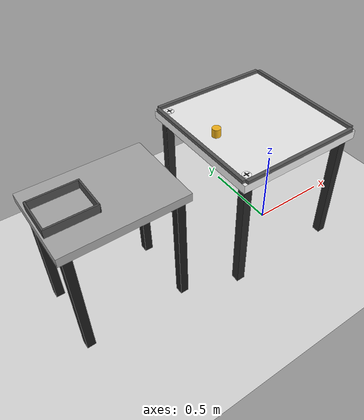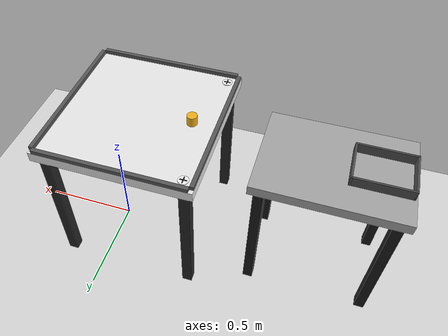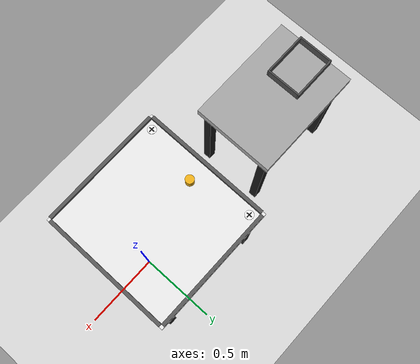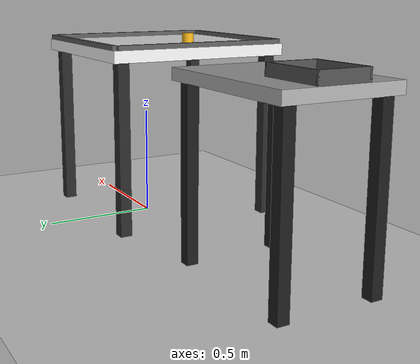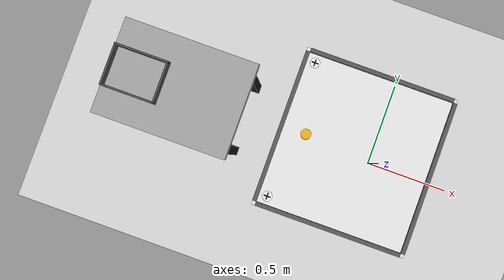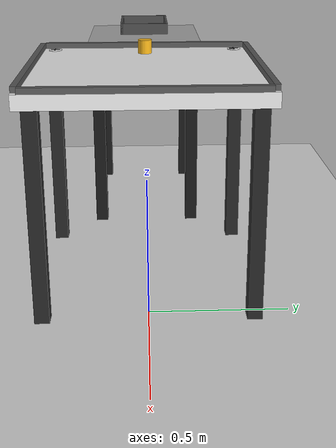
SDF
<sdf version="1.10">
  <world name="visual_autopick_world">

    <plugin filename="gz-sim-physics-system" name="gz::sim::systems::Physics" />
    <plugin filename="gz-sim-user-commands-system" name="gz::sim::systems::UserCommands" />
    <plugin filename="gz-sim-scene-broadcaster-system" name="gz::sim::systems::SceneBroadcaster" />

    <plugin filename="gz-sim-sensors-system" name="gz::sim::systems::Sensors">
      <render_engine>ogre</render_engine>
    </plugin>

    <gravity>0 0 -9.81</gravity>

    <scene>
      <ambient>0.6 0.6 0.6 1</ambient>
      <background>0.95 0.95 0.95 1</background>
      <shadows>true</shadows>
    </scene>

    <physics name="ode_physics" type="ignored">
      <max_step_size>0.001</max_step_size>
      <real_time_update_rate>1000</real_time_update_rate>
      <dart>
        <collision_detector>bullet</collision_detector>
      </dart>
    </physics>

    <light name="sun_world" type="directional">
      <pose>0 0 10 0 0 0</pose>
      <diffuse>1 1 1 1</diffuse>
      <specular>0.1 0.1 0.1 1</specular>
      <direction>-0.5 0.5 -1</direction>
      <cast_shadows>true</cast_shadows>
    </light>

    <model name="ground_plane">
      <static>true</static>
      <pose>0 0 0 0 0 0</pose>
      <link name="link">
        <collision name="collision">
          <geometry><plane><normal>0 0 1</normal><size>100 100</size></plane></geometry>
        </collision>
        <visual name="visual">
          <geometry><plane><normal>0 0 1</normal><size>100 100</size></plane></geometry>
          <material><diffuse>0.85 0.85 0.85 1</diffuse></material>
        </visual>
      </link>
      <plugin filename="gz-sim-pose-publisher-system" name="gz::sim::systems::PosePublisher">
        <publish_pose>true</publish_pose>
        <publish_link_pose>true</publish_link_pose>
        <publish_visual_pose>false</publish_visual_pose>
        <publish_collision_pose>false</publish_collision_pose>
        <static_publisher>false</static_publisher>
      </plugin>
    </model>

    <!-- Mesa de trabajo (objetos) -->
    <model name="mesa_pro">
      <static>true</static>
      <pose>-0.17 0 0.075 0 0 0</pose>
      <link name="link">

        <collision name="tablero_collision">
          <pose>0 0 0.75 0 0 0</pose>
          <geometry><box><size>0.768 0.80 0.05</size></box></geometry>
        </collision>
        <visual name="tablero_visual">
          <pose>0 0 0.75 0 0 0</pose>
          <geometry><box><size>0.768 0.80 0.05</size></box></geometry>
          <material><diffuse>0.92 0.92 0.92 1</diffuse></material>
        </visual>

        <collision name="wall_far_x_pos_c">
          <pose>0.374 0 0.785 0 0 0</pose>
          <geometry><box><size>0.02 0.76 0.02</size></box></geometry>
        </collision>
        <visual name="wall_far_x_pos_v">
          <pose>0.374 0 0.785 0 0 0</pose>
          <geometry><box><size>0.02 0.76 0.02</size></box></geometry>
          <material><diffuse>0.35 0.35 0.35 1</diffuse></material>
        </visual>

        <collision name="wall_near_x_neg_c">
          <pose>-0.374 0 0.785 0 0 0</pose>
          <geometry><box><size>0.02 0.76 0.02</size></box></geometry>
        </collision>
        <visual name="wall_near_x_neg_v">
          <pose>-0.374 0 0.785 0 0 0</pose>
          <geometry><box><size>0.02 0.76 0.02</size></box></geometry>
          <material><diffuse>0.35 0.35 0.35 1</diffuse></material>
        </visual>

        <collision name="wall_north_c">
          <pose>0 0.39 0.785 0 0 0</pose>
          <geometry><box><size>0.728 0.02 0.02</size></box></geometry>
        </collision>
        <visual name="wall_north_v">
          <pose>0 0.39 0.785 0 0 0</pose>
          <geometry><box><size>0.728 0.02 0.02</size></box></geometry>
          <material><diffuse>0.35 0.35 0.35 1</diffuse></material>
        </visual>

        <collision name="wall_south_c">
          <pose>0 -0.39 0.785 0 0 0</pose>
          <geometry><box><size>0.728 0.02 0.02</size></box></geometry>
        </collision>
        <visual name="wall_south_v">
          <pose>0 -0.39 0.785 0 0 0</pose>
          <geometry><box><size>0.728 0.02 0.02</size></box></geometry>
          <material><diffuse>0.35 0.35 0.35 1</diffuse></material>
        </visual>

        <!-- Marcadores de esquina para calibración visual -->
        <visual name="test_marker_front_left_disk_v">
          <pose>-0.324 0.340 0.776 0 0 0</pose>
          <geometry><cylinder><radius>0.025</radius><length>0.003</length></cylinder></geometry>
          <material>
            <ambient>0.96 0.96 0.96 1</ambient>
            <diffuse>0.96 0.96 0.96 1</diffuse>
            <emissive>0.05 0.05 0.05 1</emissive>
          </material>
        </visual>
        <visual name="test_marker_front_left_cross_h_v">
          <pose>-0.324 0.340 0.778 0 0 0</pose>
          <geometry><box><size>0.034 0.005 0.002</size></box></geometry>
          <material><ambient>0.12 0.12 0.12 1</ambient><diffuse>0.12 0.12 0.12 1</diffuse></material>
        </visual>
        <visual name="test_marker_front_left_cross_v_v">
          <pose>-0.324 0.340 0.778 0 0 0</pose>
          <geometry><box><size>0.005 0.034 0.002</size></box></geometry>
          <material><ambient>0.12 0.12 0.12 1</ambient><diffuse>0.12 0.12 0.12 1</diffuse></material>
        </visual>

        <visual name="test_marker_front_right_disk_v">
          <pose>-0.324 -0.340 0.776 0 0 0</pose>
          <geometry><cylinder><radius>0.025</radius><length>0.003</length></cylinder></geometry>
          <material>
            <ambient>0.96 0.96 0.96 1</ambient>
            <diffuse>0.96 0.96 0.96 1</diffuse>
            <emissive>0.05 0.05 0.05 1</emissive>
          </material>
        </visual>
        <visual name="test_marker_front_right_cross_h_v">
          <pose>-0.324 -0.340 0.778 0 0 0</pose>
          <geometry><box><size>0.034 0.005 0.002</size></box></geometry>
          <material><ambient>0.12 0.12 0.12 1</ambient><diffuse>0.12 0.12 0.12 1</diffuse></material>
        </visual>
        <visual name="test_marker_front_right_cross_v_v">
          <pose>-0.324 -0.340 0.778 0 0 0</pose>
          <geometry><box><size>0.005 0.034 0.002</size></box></geometry>
          <material><ambient>0.12 0.12 0.12 1</ambient><diffuse>0.12 0.12 0.12 1</diffuse></material>
        </visual>

        <!-- Patas -->
        <collision name="p1c"><pose> 0.334  0.35 0.375 0 0 0</pose><geometry><box><size>0.05 0.05 0.75</size></box></geometry></collision>
        <visual name="p1v"><pose> 0.334  0.35 0.375 0 0 0</pose><geometry><box><size>0.05 0.05 0.75</size></box></geometry><material><diffuse>0.15 0.15 0.15 1</diffuse></material></visual>

        <collision name="p2c"><pose> 0.334 -0.35 0.375 0 0 0</pose><geometry><box><size>0.05 0.05 0.75</size></box></geometry></collision>
        <visual name="p2v"><pose> 0.334 -0.35 0.375 0 0 0</pose><geometry><box><size>0.05 0.05 0.75</size></box></geometry><material><diffuse>0.15 0.15 0.15 1</diffuse></material></visual>

        <collision name="p3c"><pose>-0.334  0.35 0.375 0 0 0</pose><geometry><box><size>0.05 0.05 0.75</size></box></geometry></collision>
        <visual name="p3v"><pose>-0.334  0.35 0.375 0 0 0</pose><geometry><box><size>0.05 0.05 0.75</size></box></geometry><material><diffuse>0.15 0.15 0.15 1</diffuse></material></visual>

        <collision name="p4c"><pose>-0.334 -0.35 0.375 0 0 0</pose><geometry><box><size>0.05 0.05 0.75</size></box></geometry></collision>
        <visual name="p4v"><pose>-0.334 -0.35 0.375 0 0 0</pose><geometry><box><size>0.05 0.05 0.75</size></box></geometry><material><diffuse>0.15 0.15 0.15 1</diffuse></material></visual>

      </link>
    </model>

    <!-- Mesa soporte del robot UR5 -->
    <model name="mesa_robot">
      <static>true</static>
      <pose>-1.10 0.00 0.025 0 0 0</pose>
      <link name="link">

        <collision name="tablero_collision">
          <pose>0 0 0.75 0 0 0</pose>
          <geometry><box><size>0.70 0.50 0.05</size></box></geometry>
        </collision>
        <visual name="tablero_visual">
          <pose>0 0 0.75 0 0 0</pose>
          <geometry><box><size>0.70 0.50 0.05</size></box></geometry>
          <material><diffuse>0.65 0.65 0.65 1</diffuse></material>
        </visual>

        <collision name="p1"><pose> 0.30  0.20 0.375 0 0 0</pose><geometry><box><size>0.05 0.05 0.75</size></box></geometry></collision>
        <visual name="p1v"><pose> 0.30  0.20 0.375 0 0 0</pose><geometry><box><size>0.05 0.05 0.75</size></box></geometry><material><diffuse>0.10 0.10 0.10 1</diffuse></material></visual>

        <collision name="p2"><pose> 0.30 -0.20 0.375 0 0 0</pose><geometry><box><size>0.05 0.05 0.75</size></box></geometry></collision>
        <visual name="p2v"><pose> 0.30 -0.20 0.375 0 0 0</pose><geometry><box><size>0.05 0.05 0.75</size></box></geometry><material><diffuse>0.10 0.10 0.10 1</diffuse></material></visual>

        <collision name="p3"><pose>-0.30  0.20 0.375 0 0 0</pose><geometry><box><size>0.05 0.05 0.75</size></box></geometry></collision>
        <visual name="p3v"><pose>-0.30  0.20 0.375 0 0 0</pose><geometry><box><size>0.05 0.05 0.75</size></box></geometry><material><diffuse>0.10 0.10 0.10 1</diffuse></material></visual>

        <collision name="p4"><pose>-0.30 -0.20 0.375 0 0 0</pose><geometry><box><size>0.05 0.05 0.75</size></box></geometry></collision>
        <visual name="p4v"><pose>-0.30 -0.20 0.375 0 0 0</pose><geometry><box><size>0.05 0.05 0.75</size></box></geometry><material><diffuse>0.10 0.10 0.10 1</diffuse></material></visual>

      </link>
    </model>

    <!-- Bandeja de depósito / cesta -->
    <model name="bandeja_deposito">
      <static>true</static>
      <pose>-1.30 0.00 0.780 0 0 0</pose>
      <link name="link">
        <collision name="base_c">
          <geometry><box><size>0.28 0.22 0.01</size></box></geometry>
        </collision>
        <visual name="base_v">
          <geometry><box><size>0.28 0.22 0.01</size></box></geometry>
          <material><diffuse>0.95 0.85 0.20 1</diffuse></material>
        </visual>

        <collision name="wall_n_c">
          <pose>0 0.105 0.035 0 0 0</pose>
          <geometry><box><size>0.28 0.01 0.07</size></box></geometry>
        </collision>
        <visual name="wall_n_v">
          <pose>0 0.105 0.035 0 0 0</pose>
          <geometry><box><size>0.28 0.01 0.07</size></box></geometry>
          <material><diffuse>0.30 0.30 0.30 1</diffuse></material>
        </visual>

        <collision name="wall_s_c">
          <pose>0 -0.105 0.035 0 0 0</pose>
          <geometry><box><size>0.28 0.01 0.07</size></box></geometry>
        </collision>
        <visual name="wall_s_v">
          <pose>0 -0.105 0.035 0 0 0</pose>
          <geometry><box><size>0.28 0.01 0.07</size></box></geometry>
          <material><diffuse>0.30 0.30 0.30 1</diffuse></material>
        </visual>

        <collision name="wall_e_c">
          <pose>0.135 0 0.035 0 0 0</pose>
          <geometry><box><size>0.01 0.22 0.07</size></box></geometry>
        </collision>
        <visual name="wall_e_v">
          <pose>0.135 0 0.035 0 0 0</pose>
          <geometry><box><size>0.01 0.22 0.07</size></box></geometry>
          <material><diffuse>0.30 0.30 0.30 1</diffuse></material>
        </visual>

        <collision name="wall_w_c">
          <pose>-0.135 0 0.035 0 0 0</pose>
          <geometry><box><size>0.01 0.22 0.07</size></box></geometry>
        </collision>
        <visual name="wall_w_v">
          <pose>-0.135 0 0.035 0 0 0</pose>
          <geometry><box><size>0.01 0.22 0.07</size></box></geometry>
          <material><diffuse>0.30 0.30 0.30 1</diffuse></material>
        </visual>
      </link>
    </model>

    <!-- Objeto de pick: cilindro amarillo sobre la mesa -->
    <model name="pick_demo">
      <static>false</static>
      <allow_auto_disable>true</allow_auto_disable>
      <pose>-0.42 0.00 0.876 0 0 0</pose>
      <link name="link">
        <inertial>
          <mass>0.08</mass>
          <inertia>
            <ixx>0.0002</ixx><iyy>0.0002</iyy><izz>0.0002</izz>
            <ixy>0</ixy><ixz>0</ixz><iyz>0</iyz>
          </inertia>
        </inertial>
        <collision name="collision">
          <geometry><cylinder><radius>0.025</radius><length>0.05</length></cylinder></geometry>
          <surface>
            <friction>
              <ode><mu>2.0</mu><mu2>2.0</mu2></ode>
            </friction>
            <bounce>
              <restitution_coefficient>0.0</restitution_coefficient>
              <threshold>100000</threshold>
            </bounce>
            <contact>
              <ode><kp>200000</kp><kd>50.0</kd><max_vel>0.1</max_vel><min_depth>0.001</min_depth></ode>
            </contact>
          </surface>
        </collision>
        <visual name="visual">
          <geometry><cylinder><radius>0.025</radius><length>0.05</length></cylinder></geometry>
          <material><diffuse>0.95 0.70 0.10 1</diffuse></material>
        </visual>
      </link>
    </model>

    <!-- Cámara overhead: RGB + depth -->
    <model name="camera_overhead">
      <static>true</static>
      <pose>-0.85 0.00 1.85 0 1.02 0</pose>
      <link name="link">
        <sensor name="camera_overhead_rgb" type="camera">
          <always_on>true</always_on>
          <update_rate>30</update_rate>
          <topic>/camera_overhead/image</topic>
          <camera>
            <horizontal_fov>0.75</horizontal_fov>
            <image><width>320</width><height>240</height><format>R8G8B8</format></image>
            <clip><near>0.05</near><far>10.0</far></clip>
          </camera>
        </sensor>
        <sensor name="camera_overhead_depth" type="depth_camera">
          <always_on>true</always_on>
          <update_rate>15</update_rate>
          <topic>/camera_overhead/depth_image</topic>
          <camera>
            <horizontal_fov>0.75</horizontal_fov>
            <image><width>320</width><height>240</height><format>R8G8B8</format></image>
            <clip><near>0.05</near><far>10.0</far></clip>
          </camera>
        </sensor>
      </link>
    </model>

  </world>
</sdf>
